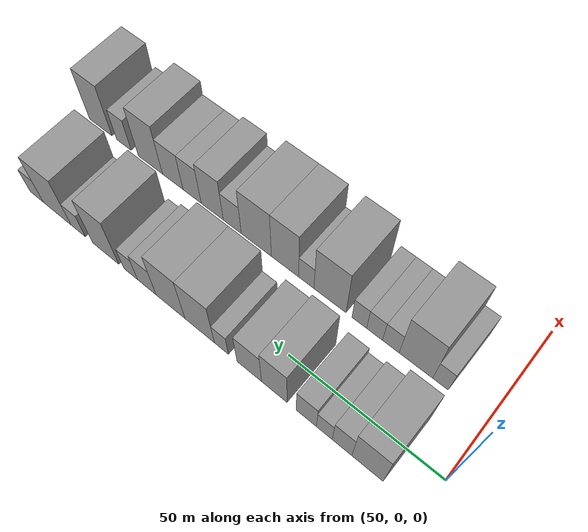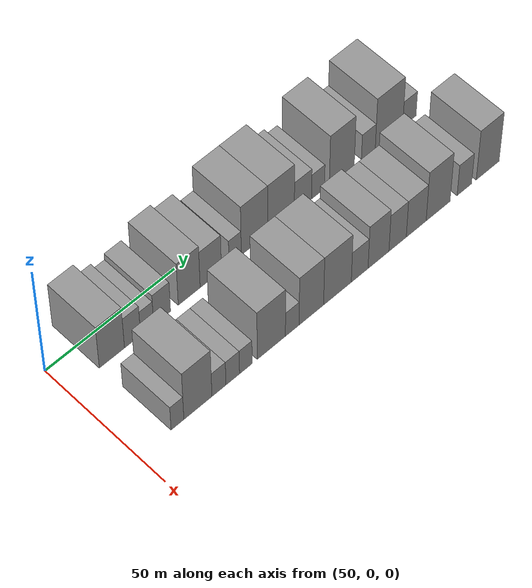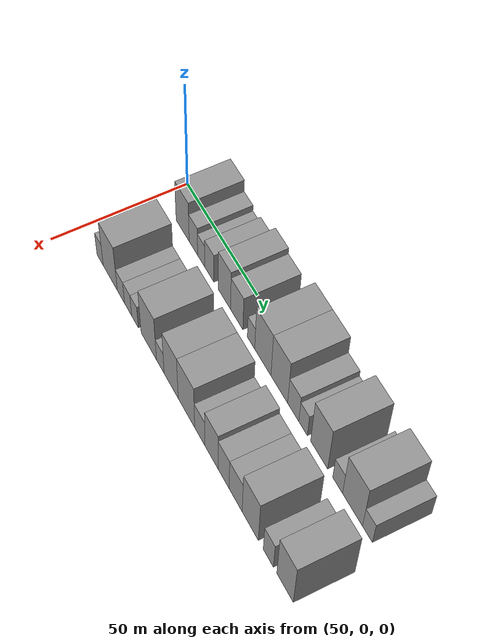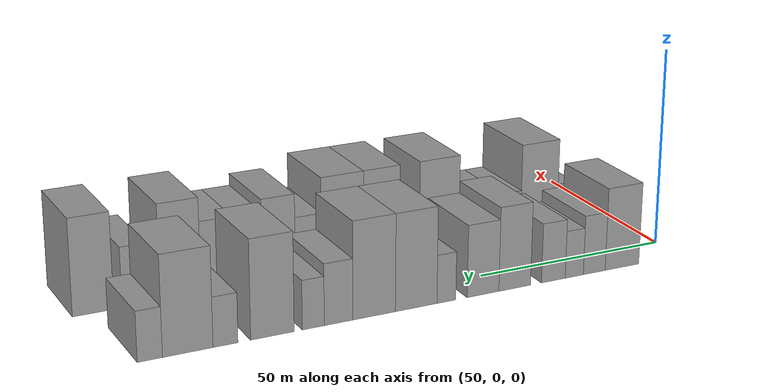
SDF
<sdf version="1.6">
 <world name="default">
  <model name="building_30">
   <static>1</static>
   <pose>50.0000 16.5006 0 0.000000 0.000000 0.000000</pose>
   <link name="link">
    <pose>0 0 10.50 0 0 0</pose>
    <collision name="collision"><geometry><box><size>20.0000 9.6423 21.0000</size></box></geometry></collision>
    <visual name="visual">
     <cast_shadows>0</cast_shadows>
     <geometry><box><size>20.0000 9.6423 21.0000</size></box></geometry>
     <material>
      <script>
       <uri>model://grey_wall/materials/scripts</uri>
       <uri>model://grey_wall/materials/textures</uri>
       <name>vrc/grey_wall</name>
      </script>
     </material>
    </visual>
   </link>
  </model>
  <model name="building_31">
   <static>1</static>
   <pose>50.0000 24.4151 0 0.000000 0.000000 0.000000</pose>
   <link name="link">
    <pose>0 0 7.50 0 0 0</pose>
    <collision name="collision"><geometry><box><size>20.0000 6.1867 15.0000</size></box></geometry></collision>
    <visual name="visual">
     <cast_shadows>0</cast_shadows>
     <geometry><box><size>20.0000 6.1867 15.0000</size></box></geometry>
     <material>
      <script>
       <uri>model://grey_wall/materials/scripts</uri>
       <uri>model://grey_wall/materials/textures</uri>
       <name>vrc/grey_wall</name>
      </script>
     </material>
    </visual>
   </link>
  </model>
  <model name="building_32">
   <static>1</static>
   <pose>50.0000 30.0523 0 0.000000 0.000000 0.000000</pose>
   <link name="link">
    <pose>0 0 6.00 0 0 0</pose>
    <collision name="collision"><geometry><box><size>20.0000 5.0875 12.0000</size></box></geometry></collision>
    <visual name="visual">
     <cast_shadows>0</cast_shadows>
     <geometry><box><size>20.0000 5.0875 12.0000</size></box></geometry>
     <material>
      <script>
       <uri>model://grey_wall/materials/scripts</uri>
       <uri>model://grey_wall/materials/textures</uri>
       <name>vrc/grey_wall</name>
      </script>
     </material>
    </visual>
   </link>
  </model>
  <model name="building_33">
   <static>1</static>
   <pose>50.0000 35.8845 0 0.000000 0.000000 0.000000</pose>
   <link name="link">
    <pose>0 0 7.50 0 0 0</pose>
    <collision name="collision"><geometry><box><size>20.0000 6.5770 15.0000</size></box></geometry></collision>
    <visual name="visual">
     <cast_shadows>0</cast_shadows>
     <geometry><box><size>20.0000 6.5770 15.0000</size></box></geometry>
     <material>
      <script>
       <uri>model://grey_wall/materials/scripts</uri>
       <uri>model://grey_wall/materials/textures</uri>
       <name>vrc/grey_wall</name>
      </script>
     </material>
    </visual>
   </link>
  </model>
  <model name="building_34">
   <static>1</static>
   <pose>50.0000 46.4833 0 0.000000 0.000000 0.000000</pose>
   <link name="link">
    <pose>0 0 10.50 0 0 0</pose>
    <collision name="collision"><geometry><box><size>20.0000 8.6205 21.0000</size></box></geometry></collision>
    <visual name="visual">
     <cast_shadows>0</cast_shadows>
     <geometry><box><size>20.0000 8.6205 21.0000</size></box></geometry>
     <material>
      <script>
       <uri>model://grey_wall/materials/scripts</uri>
       <uri>model://grey_wall/materials/textures</uri>
       <name>vrc/grey_wall</name>
      </script>
     </material>
    </visual>
   </link>
  </model>
  <model name="building_35">
   <static>1</static>
   <pose>50.0000 55.0244 0 0.000000 0.000000 0.000000</pose>
   <link name="link">
    <pose>0 0 9.00 0 0 0</pose>
    <collision name="collision"><geometry><box><size>20.0000 8.4618 18.0000</size></box></geometry></collision>
    <visual name="visual">
     <cast_shadows>0</cast_shadows>
     <geometry><box><size>20.0000 8.4618 18.0000</size></box></geometry>
     <material>
      <script>
       <uri>model://grey_wall/materials/scripts</uri>
       <uri>model://grey_wall/materials/textures</uri>
       <name>vrc/grey_wall</name>
      </script>
     </material>
    </visual>
   </link>
  </model>
  <model name="building_36">
   <static>1</static>
   <pose>50.0000 64.7247 0 0.000000 0.000000 0.000000</pose>
   <link name="link">
    <pose>0 0 6.00 0 0 0</pose>
    <collision name="collision"><geometry><box><size>20.0000 4.9388 12.0000</size></box></geometry></collision>
    <visual name="visual">
     <cast_shadows>0</cast_shadows>
     <geometry><box><size>20.0000 4.9388 12.0000</size></box></geometry>
     <material>
      <script>
       <uri>model://grey_wall/materials/scripts</uri>
       <uri>model://grey_wall/materials/textures</uri>
       <name>vrc/grey_wall</name>
      </script>
     </material>
    </visual>
   </link>
  </model>
  <model name="building_37">
   <static>1</static>
   <pose>50.0000 72.5590 0 0.000000 0.000000 0.000000</pose>
   <link name="link">
    <pose>0 0 12.00 0 0 0</pose>
    <collision name="collision"><geometry><box><size>20.0000 10.7297 24.0000</size></box></geometry></collision>
    <visual name="visual">
     <cast_shadows>0</cast_shadows>
     <geometry><box><size>20.0000 10.7297 24.0000</size></box></geometry>
     <material>
      <script>
       <uri>model://grey_wall/materials/scripts</uri>
       <uri>model://grey_wall/materials/textures</uri>
       <name>vrc/grey_wall</name>
      </script>
     </material>
    </visual>
   </link>
  </model>
  <model name="building_38">
   <static>1</static>
   <pose>50.0000 83.3200 0 0.000000 0.000000 0.000000</pose>
   <link name="link">
    <pose>0 0 12.00 0 0 0</pose>
    <collision name="collision"><geometry><box><size>20.0000 10.7925 24.0000</size></box></geometry></collision>
    <visual name="visual">
     <cast_shadows>0</cast_shadows>
     <geometry><box><size>20.0000 10.7925 24.0000</size></box></geometry>
     <material>
      <script>
       <uri>model://grey_wall/materials/scripts</uri>
       <uri>model://grey_wall/materials/textures</uri>
       <name>vrc/grey_wall</name>
      </script>
     </material>
    </visual>
   </link>
  </model>
  <model name="building_39">
   <static>1</static>
   <pose>50.0000 92.2625 0 0.000000 0.000000 0.000000</pose>
   <link name="link">
    <pose>0 0 7.50 0 0 0</pose>
    <collision name="collision"><geometry><box><size>20.0000 7.0925 15.0000</size></box></geometry></collision>
    <visual name="visual">
     <cast_shadows>0</cast_shadows>
     <geometry><box><size>20.0000 7.0925 15.0000</size></box></geometry>
     <material>
      <script>
       <uri>model://grey_wall/materials/scripts</uri>
       <uri>model://grey_wall/materials/textures</uri>
       <name>vrc/grey_wall</name>
      </script>
     </material>
    </visual>
   </link>
  </model>
  <model name="building_40">
   <static>1</static>
   <pose>50.0000 98.4907 0 0.000000 0.000000 0.000000</pose>
   <link name="link">
    <pose>0 0 6.00 0 0 0</pose>
    <collision name="collision"><geometry><box><size>20.0000 5.3638 12.0000</size></box></geometry></collision>
    <visual name="visual">
     <cast_shadows>0</cast_shadows>
     <geometry><box><size>20.0000 5.3638 12.0000</size></box></geometry>
     <material>
      <script>
       <uri>model://grey_wall/materials/scripts</uri>
       <uri>model://grey_wall/materials/textures</uri>
       <name>vrc/grey_wall</name>
      </script>
     </material>
    </visual>
   </link>
  </model>
  <model name="building_41">
   <static>1</static>
   <pose>50.0000 108.3969 0 0.000000 0.000000 0.000000</pose>
   <link name="link">
    <pose>0 0 12.00 0 0 0</pose>
    <collision name="collision"><geometry><box><size>20.0000 10.4485 24.0000</size></box></geometry></collision>
    <visual name="visual">
     <cast_shadows>0</cast_shadows>
     <geometry><box><size>20.0000 10.4485 24.0000</size></box></geometry>
     <material>
      <script>
       <uri>model://grey_wall/materials/scripts</uri>
       <uri>model://grey_wall/materials/textures</uri>
       <name>vrc/grey_wall</name>
      </script>
     </material>
    </visual>
   </link>
  </model>
  <model name="building_42">
   <static>1</static>
   <pose>50.0000 119.5557 0 0.000000 0.000000 0.000000</pose>
   <link name="link">
    <pose>0 0 6.00 0 0 0</pose>
    <collision name="collision"><geometry><box><size>20.0000 5.8690 12.0000</size></box></geometry></collision>
    <visual name="visual">
     <cast_shadows>0</cast_shadows>
     <geometry><box><size>20.0000 5.8690 12.0000</size></box></geometry>
     <material>
      <script>
       <uri>model://grey_wall/materials/scripts</uri>
       <uri>model://grey_wall/materials/textures</uri>
       <name>vrc/grey_wall</name>
      </script>
     </material>
    </visual>
   </link>
  </model>
  <model name="building_43">
   <static>1</static>
   <pose>50.0000 128.3248 0 0.000000 0.000000 0.000000</pose>
   <link name="link">
    <pose>0 0 12.00 0 0 0</pose>
    <collision name="collision"><geometry><box><size>20.0000 11.6693 24.0000</size></box></geometry></collision>
    <visual name="visual">
     <cast_shadows>0</cast_shadows>
     <geometry><box><size>20.0000 11.6693 24.0000</size></box></geometry>
     <material>
      <script>
       <uri>model://grey_wall/materials/scripts</uri>
       <uri>model://grey_wall/materials/textures</uri>
       <name>vrc/grey_wall</name>
      </script>
     </material>
    </visual>
   </link>
  </model>
  <model name="building_44">
   <static>1</static>
   <pose>50.0000 137.0263 0 0.000000 0.000000 0.000000</pose>
   <link name="link">
    <pose>0 0 6.00 0 0 0</pose>
    <collision name="collision"><geometry><box><size>20.0000 5.7337 12.0000</size></box></geometry></collision>
    <visual name="visual">
     <cast_shadows>0</cast_shadows>
     <geometry><box><size>20.0000 5.7337 12.0000</size></box></geometry>
     <material>
      <script>
       <uri>model://grey_wall/materials/scripts</uri>
       <uri>model://grey_wall/materials/textures</uri>
       <name>vrc/grey_wall</name>
      </script>
     </material>
    </visual>
   </link>
  </model>
  <model name="building_95">
   <static>1</static>
   <pose>79.0000 14.8140 0 0.000000 0.000000 0.000000</pose>
   <link name="link">
    <pose>0 0 6.00 0 0 0</pose>
    <collision name="collision"><geometry><box><size>20.0000 4.8831 12.0000</size></box></geometry></collision>
    <visual name="visual">
     <cast_shadows>0</cast_shadows>
     <geometry><box><size>20.0000 4.8831 12.0000</size></box></geometry>
     <material>
      <script>
       <uri>model://grey_wall/materials/scripts</uri>
       <uri>model://grey_wall/materials/textures</uri>
       <name>vrc/grey_wall</name>
      </script>
     </material>
    </visual>
   </link>
  </model>
  <model name="building_96">
   <static>1</static>
   <pose>79.0000 22.6443 0 0.000000 0.000000 0.000000</pose>
   <link name="link">
    <pose>0 0 12.00 0 0 0</pose>
    <collision name="collision"><geometry><box><size>20.0000 10.7775 24.0000</size></box></geometry></collision>
    <visual name="visual">
     <cast_shadows>0</cast_shadows>
     <geometry><box><size>20.0000 10.7775 24.0000</size></box></geometry>
     <material>
      <script>
       <uri>model://grey_wall/materials/scripts</uri>
       <uri>model://grey_wall/materials/textures</uri>
       <name>vrc/grey_wall</name>
      </script>
     </material>
    </visual>
   </link>
  </model>
  <model name="building_97">
   <static>1</static>
   <pose>79.0000 30.7441 0 0.000000 0.000000 0.000000</pose>
   <link name="link">
    <pose>0 0 6.00 0 0 0</pose>
    <collision name="collision"><geometry><box><size>20.0000 5.4222 12.0000</size></box></geometry></collision>
    <visual name="visual">
     <cast_shadows>0</cast_shadows>
     <geometry><box><size>20.0000 5.4222 12.0000</size></box></geometry>
     <material>
      <script>
       <uri>model://grey_wall/materials/scripts</uri>
       <uri>model://grey_wall/materials/textures</uri>
       <name>vrc/grey_wall</name>
      </script>
     </material>
    </visual>
   </link>
  </model>
  <model name="building_98">
   <static>1</static>
   <pose>79.0000 36.1029 0 0.000000 0.000000 0.000000</pose>
   <link name="link">
    <pose>0 0 6.00 0 0 0</pose>
    <collision name="collision"><geometry><box><size>20.0000 5.2954 12.0000</size></box></geometry></collision>
    <visual name="visual">
     <cast_shadows>0</cast_shadows>
     <geometry><box><size>20.0000 5.2954 12.0000</size></box></geometry>
     <material>
      <script>
       <uri>model://grey_wall/materials/scripts</uri>
       <uri>model://grey_wall/materials/textures</uri>
       <name>vrc/grey_wall</name>
      </script>
     </material>
    </visual>
   </link>
  </model>
  <model name="building_99">
   <static>1</static>
   <pose>79.0000 41.2283 0 0.000000 0.000000 0.000000</pose>
   <link name="link">
    <pose>0 0 6.00 0 0 0</pose>
    <collision name="collision"><geometry><box><size>20.0000 4.9553 12.0000</size></box></geometry></collision>
    <visual name="visual">
     <cast_shadows>0</cast_shadows>
     <geometry><box><size>20.0000 4.9553 12.0000</size></box></geometry>
     <material>
      <script>
       <uri>model://grey_wall/materials/scripts</uri>
       <uri>model://grey_wall/materials/textures</uri>
       <name>vrc/grey_wall</name>
      </script>
     </material>
    </visual>
   </link>
  </model>
  <model name="building_100">
   <static>1</static>
   <pose>79.0000 51.2626 0 0.000000 0.000000 0.000000</pose>
   <link name="link">
    <pose>0 0 12.00 0 0 0</pose>
    <collision name="collision"><geometry><box><size>20.0000 11.1134 24.0000</size></box></geometry></collision>
    <visual name="visual">
     <cast_shadows>0</cast_shadows>
     <geometry><box><size>20.0000 11.1134 24.0000</size></box></geometry>
     <material>
      <script>
       <uri>model://grey_wall/materials/scripts</uri>
       <uri>model://grey_wall/materials/textures</uri>
       <name>vrc/grey_wall</name>
      </script>
     </material>
    </visual>
   </link>
  </model>
  <model name="building_101">
   <static>1</static>
   <pose>79.0000 59.5426 0 0.000000 0.000000 0.000000</pose>
   <link name="link">
    <pose>0 0 6.00 0 0 0</pose>
    <collision name="collision"><geometry><box><size>20.0000 5.4466 12.0000</size></box></geometry></collision>
    <visual name="visual">
     <cast_shadows>0</cast_shadows>
     <geometry><box><size>20.0000 5.4466 12.0000</size></box></geometry>
     <material>
      <script>
       <uri>model://grey_wall/materials/scripts</uri>
       <uri>model://grey_wall/materials/textures</uri>
       <name>vrc/grey_wall</name>
      </script>
     </material>
    </visual>
   </link>
  </model>
  <model name="building_102">
   <static>1</static>
   <pose>79.0000 67.1863 0 0.000000 0.000000 0.000000</pose>
   <link name="link">
    <pose>0 0 12.00 0 0 0</pose>
    <collision name="collision"><geometry><box><size>20.0000 9.8408 24.0000</size></box></geometry></collision>
    <visual name="visual">
     <cast_shadows>0</cast_shadows>
     <geometry><box><size>20.0000 9.8408 24.0000</size></box></geometry>
     <material>
      <script>
       <uri>model://grey_wall/materials/scripts</uri>
       <uri>model://grey_wall/materials/textures</uri>
       <name>vrc/grey_wall</name>
      </script>
     </material>
    </visual>
   </link>
  </model>
  <model name="building_103">
   <static>1</static>
   <pose>79.0000 77.7209 0 0.000000 0.000000 0.000000</pose>
   <link name="link">
    <pose>0 0 12.00 0 0 0</pose>
    <collision name="collision"><geometry><box><size>20.0000 11.2283 24.0000</size></box></geometry></collision>
    <visual name="visual">
     <cast_shadows>0</cast_shadows>
     <geometry><box><size>20.0000 11.2283 24.0000</size></box></geometry>
     <material>
      <script>
       <uri>model://grey_wall/materials/scripts</uri>
       <uri>model://grey_wall/materials/textures</uri>
       <name>vrc/grey_wall</name>
      </script>
     </material>
    </visual>
   </link>
  </model>
  <model name="building_104">
   <static>1</static>
   <pose>79.0000 86.7648 0 0.000000 0.000000 0.000000</pose>
   <link name="link">
    <pose>0 0 7.50 0 0 0</pose>
    <collision name="collision"><geometry><box><size>20.0000 6.8595 15.0000</size></box></geometry></collision>
    <visual name="visual">
     <cast_shadows>0</cast_shadows>
     <geometry><box><size>20.0000 6.8595 15.0000</size></box></geometry>
     <material>
      <script>
       <uri>model://grey_wall/materials/scripts</uri>
       <uri>model://grey_wall/materials/textures</uri>
       <name>vrc/grey_wall</name>
      </script>
     </material>
    </visual>
   </link>
  </model>
  <model name="building_105">
   <static>1</static>
   <pose>79.0000 94.4989 0 0.000000 0.000000 0.000000</pose>
   <link name="link">
    <pose>0 0 10.50 0 0 0</pose>
    <collision name="collision"><geometry><box><size>20.0000 8.6088 21.0000</size></box></geometry></collision>
    <visual name="visual">
     <cast_shadows>0</cast_shadows>
     <geometry><box><size>20.0000 8.6088 21.0000</size></box></geometry>
     <material>
      <script>
       <uri>model://grey_wall/materials/scripts</uri>
       <uri>model://grey_wall/materials/textures</uri>
       <name>vrc/grey_wall</name>
      </script>
     </material>
    </visual>
   </link>
  </model>
  <model name="building_106">
   <static>1</static>
   <pose>79.0000 102.4062 0 0.000000 0.000000 0.000000</pose>
   <link name="link">
    <pose>0 0 9.00 0 0 0</pose>
    <collision name="collision"><geometry><box><size>20.0000 7.2058 18.0000</size></box></geometry></collision>
    <visual name="visual">
     <cast_shadows>0</cast_shadows>
     <geometry><box><size>20.0000 7.2058 18.0000</size></box></geometry>
     <material>
      <script>
       <uri>model://grey_wall/materials/scripts</uri>
       <uri>model://grey_wall/materials/textures</uri>
       <name>vrc/grey_wall</name>
      </script>
     </material>
    </visual>
   </link>
  </model>
  <model name="building_107">
   <static>1</static>
   <pose>79.0000 110.1682 0 0.000000 0.000000 0.000000</pose>
   <link name="link">
    <pose>0 0 9.00 0 0 0</pose>
    <collision name="collision"><geometry><box><size>20.0000 8.3181 18.0000</size></box></geometry></collision>
    <visual name="visual">
     <cast_shadows>0</cast_shadows>
     <geometry><box><size>20.0000 8.3181 18.0000</size></box></geometry>
     <material>
      <script>
       <uri>model://grey_wall/materials/scripts</uri>
       <uri>model://grey_wall/materials/textures</uri>
       <name>vrc/grey_wall</name>
      </script>
     </material>
    </visual>
   </link>
  </model>
  <model name="building_108">
   <static>1</static>
   <pose>79.0000 119.3735 0 0.000000 0.000000 0.000000</pose>
   <link name="link">
    <pose>0 0 12.00 0 0 0</pose>
    <collision name="collision"><geometry><box><size>20.0000 10.0926 24.0000</size></box></geometry></collision>
    <visual name="visual">
     <cast_shadows>0</cast_shadows>
     <geometry><box><size>20.0000 10.0926 24.0000</size></box></geometry>
     <material>
      <script>
       <uri>model://grey_wall/materials/scripts</uri>
       <uri>model://grey_wall/materials/textures</uri>
       <name>vrc/grey_wall</name>
      </script>
     </material>
    </visual>
   </link>
  </model>
  <model name="building_109">
   <static>1</static>
   <pose>79.0000 130.5140 0 0.000000 0.000000 0.000000</pose>
   <link name="link">
    <pose>0 0 7.50 0 0 0</pose>
    <collision name="collision"><geometry><box><size>20.0000 6.1885 15.0000</size></box></geometry></collision>
    <visual name="visual">
     <cast_shadows>0</cast_shadows>
     <geometry><box><size>20.0000 6.1885 15.0000</size></box></geometry>
     <material>
      <script>
       <uri>model://grey_wall/materials/scripts</uri>
       <uri>model://grey_wall/materials/textures</uri>
       <name>vrc/grey_wall</name>
      </script>
     </material>
    </visual>
   </link>
  </model>
  <model name="building_110">
   <static>1</static>
   <pose>79.0000 140.5212 0 0.000000 0.000000 0.000000</pose>
   <link name="link">
    <pose>0 0 12.00 0 0 0</pose>
    <collision name="collision"><geometry><box><size>20.0000 9.8259 24.0000</size></box></geometry></collision>
    <visual name="visual">
     <cast_shadows>0</cast_shadows>
     <geometry><box><size>20.0000 9.8259 24.0000</size></box></geometry>
     <material>
      <script>
       <uri>model://grey_wall/materials/scripts</uri>
       <uri>model://grey_wall/materials/textures</uri>
       <name>vrc/grey_wall</name>
      </script>
     </material>
    </visual>
   </link>
  </model>
 </world>
</sdf>
